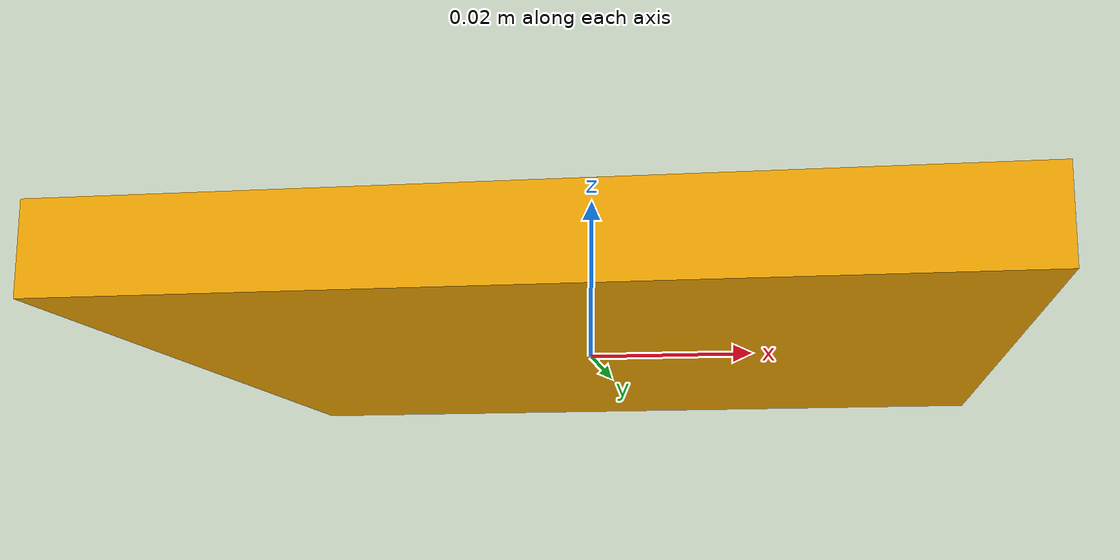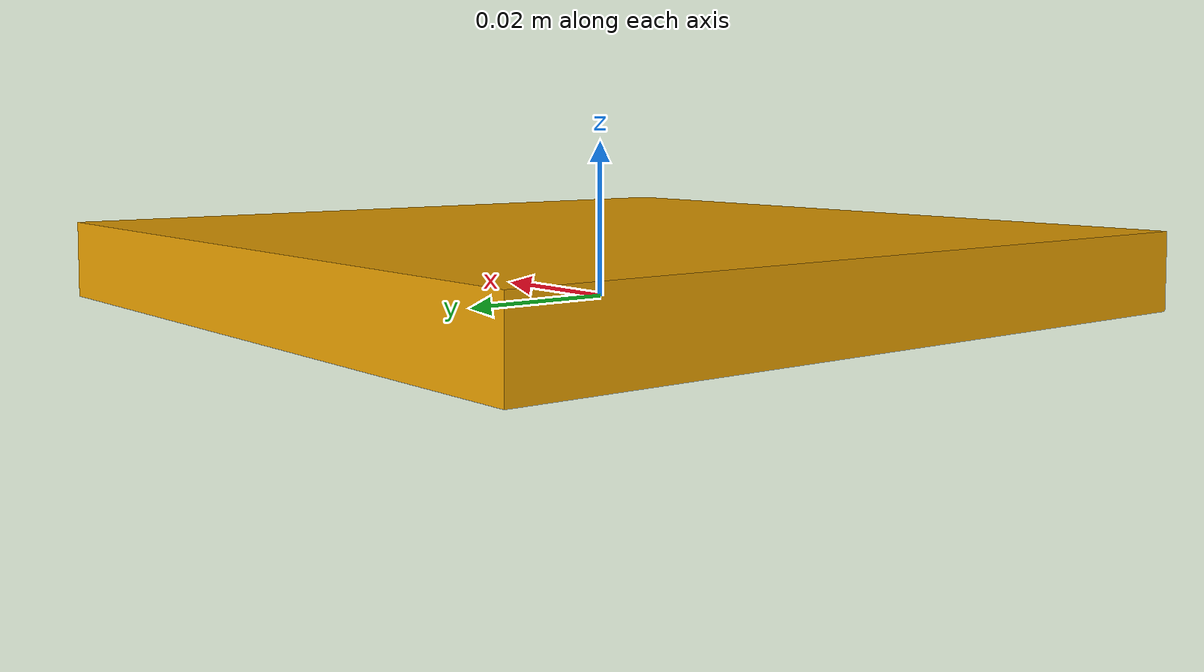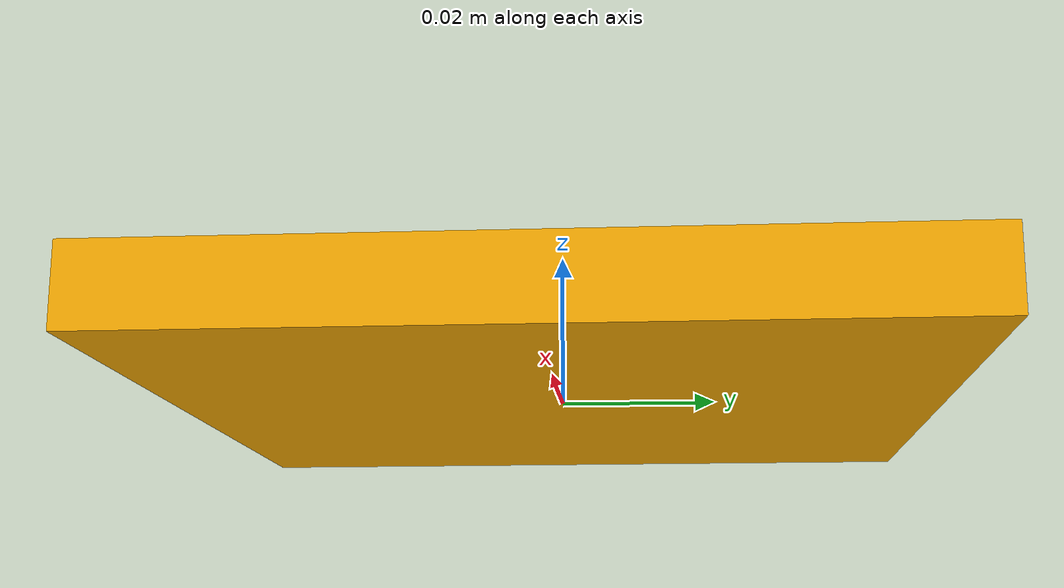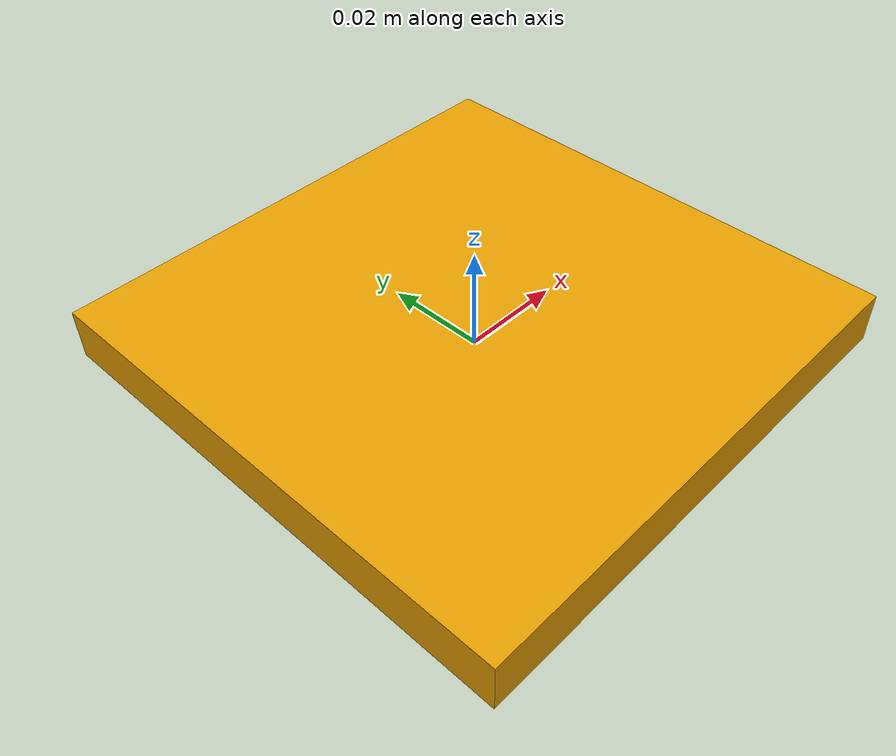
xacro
<?xml version="1.0" encoding="utf-8"?>
<robot name="irlock_beacon" xmlns:xacro="http://ros.org/wiki/xacro">

  <link name="irlock_beacon__link">
    <inertial>
      <mass value="10.0"/>
      <origin rpy="0  0  0" xyz="0  0  0"/>
      <inertia ixx="0.01" ixy="0" ixz="0" iyy="0.01" iyz="0" izz="0.01"/>
    </inertial>
    <collision name="irlock_beacon__collision">
      <origin rpy="0  0  0" xyz="0.00040832 -0.00031982 0.004"/>
      <geometry>
        <box size="0.1 0.1 0.01"/>
      </geometry>
    </collision>
    <visual name="irlock_beacon__visual">
      <origin rpy="0  0  0" xyz="0.00040832 -0.00031982 0.004"/>
      <geometry>
        <box size="0.1 0.1 0.01"/>
      </geometry>
    </visual>
  </link>

</robot>
